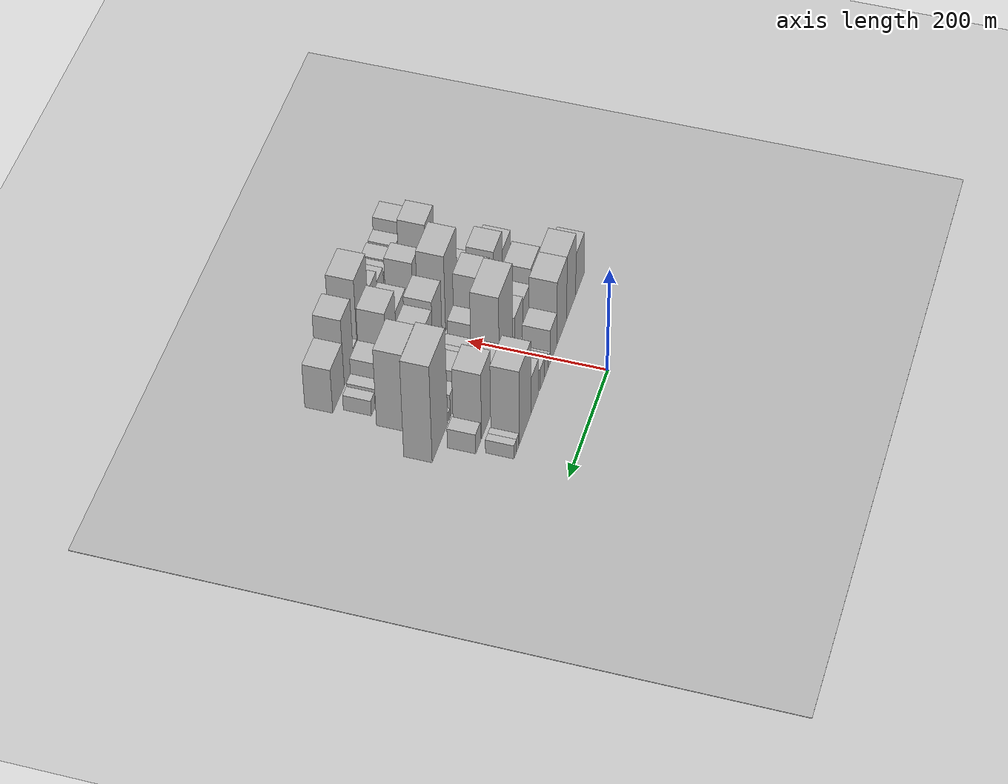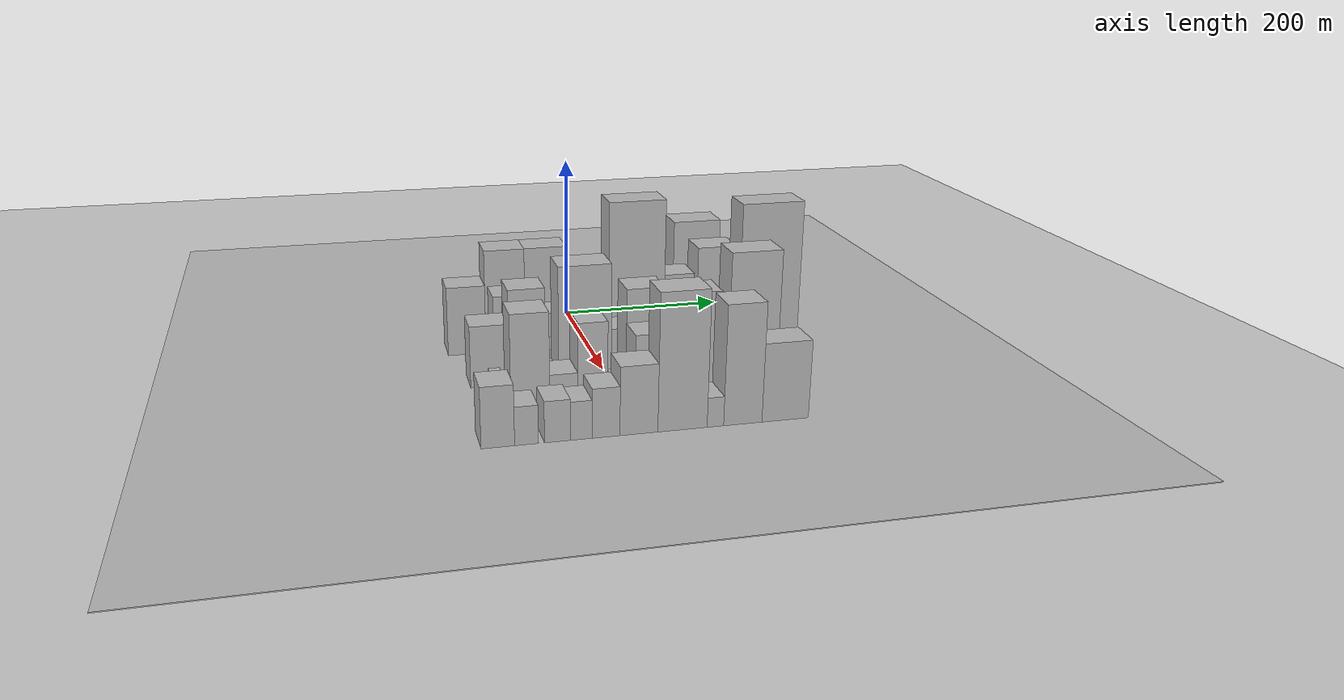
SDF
<sdf version="1.6">
 <world name="default">
  <include><name>ground_plane_1</name><uri>model://HANNAS_ground_plane</uri></include>
  <include>
   <name>ground_plane_2</name>
   <uri>model://HANNAS_ground_plane</uri>
   <pose>100 0 0  0 0 0</pose>
  </include>
  <model name="building_24">
   <static>1</static>
   <pose>100.0000 -145.9014 0 0.000000 0.000000 0.000000</pose>
   <link name="link">
    <pose>0 0 42.00 0 0 0</pose>
    <collision name="collision"><geometry><box><size>40.0000 45.0481 84.0000</size></box></geometry></collision>
    <visual name="visual">
     <cast_shadows>0</cast_shadows>
     <geometry><box><size>40.0000 45.0481 84.0000</size></box></geometry>
     <material>
      <script>
       <uri>model://HANNAS_wall/materials/scripts</uri>
       <uri>model://HANNAS_wall/materials/textures</uri>
       <name>vrc/HANNAS_wall</name>
      </script>
     </material>
    </visual>
   </link>
  </model>
  <model name="building_25">
   <static>1</static>
   <pose>100.0000 -99.7520 0 0.000000 0.000000 0.000000</pose>
   <link name="link">
    <pose>0 0 63.00 0 0 0</pose>
    <collision name="collision"><geometry><box><size>40.0000 47.2507 126.0000</size></box></geometry></collision>
    <visual name="visual">
     <cast_shadows>0</cast_shadows>
     <geometry><box><size>40.0000 47.2507 126.0000</size></box></geometry>
     <material>
      <script>
       <uri>model://HANNAS_wall/materials/scripts</uri>
       <uri>model://HANNAS_wall/materials/textures</uri>
       <name>vrc/HANNAS_wall</name>
      </script>
     </material>
    </visual>
   </link>
  </model>
  <model name="building_26">
   <static>1</static>
   <pose>100.0000 -50.9688 0 0.000000 0.000000 0.000000</pose>
   <link name="link">
    <pose>0 0 63.00 0 0 0</pose>
    <collision name="collision"><geometry><box><size>40.0000 50.3157 126.0000</size></box></geometry></collision>
    <visual name="visual">
     <cast_shadows>0</cast_shadows>
     <geometry><box><size>40.0000 50.3157 126.0000</size></box></geometry>
     <material>
      <script>
       <uri>model://HANNAS_wall/materials/scripts</uri>
       <uri>model://HANNAS_wall/materials/textures</uri>
       <name>vrc/HANNAS_wall</name>
      </script>
     </material>
    </visual>
   </link>
  </model>
  <model name="building_27">
   <static>1</static>
   <pose>100.0000 -8.4160 0 0.000000 0.000000 0.000000</pose>
   <link name="link">
    <pose>0 0 33.00 0 0 0</pose>
    <collision name="collision"><geometry><box><size>40.0000 34.7900 66.0000</size></box></geometry></collision>
    <visual name="visual">
     <cast_shadows>0</cast_shadows>
     <geometry><box><size>40.0000 34.7900 66.0000</size></box></geometry>
     <material>
      <script>
       <uri>model://HANNAS_wall/materials/scripts</uri>
       <uri>model://HANNAS_wall/materials/textures</uri>
       <name>vrc/HANNAS_wall</name>
      </script>
     </material>
    </visual>
   </link>
  </model>
  <model name="building_28">
   <static>1</static>
   <pose>100.0000 14.8980 0 0.000000 0.000000 0.000000</pose>
   <link name="link">
    <pose>0 0 12.00 0 0 0</pose>
    <collision name="collision"><geometry><box><size>40.0000 11.8380 24.0000</size></box></geometry></collision>
    <visual name="visual">
     <cast_shadows>0</cast_shadows>
     <geometry><box><size>40.0000 11.8380 24.0000</size></box></geometry>
     <material>
      <script>
       <uri>model://HANNAS_wall/materials/scripts</uri>
       <uri>model://HANNAS_wall/materials/textures</uri>
       <name>vrc/HANNAS_wall</name>
      </script>
     </material>
    </visual>
   </link>
  </model>
  <model name="building_29">
   <static>1</static>
   <pose>100.0000 30.3030 0 0.000000 0.000000 0.000000</pose>
   <link name="link">
    <pose>0 0 16.50 0 0 0</pose>
    <collision name="collision"><geometry><box><size>40.0000 18.9719 33.0000</size></box></geometry></collision>
    <visual name="visual">
     <cast_shadows>0</cast_shadows>
     <geometry><box><size>40.0000 18.9719 33.0000</size></box></geometry>
     <material>
      <script>
       <uri>model://HANNAS_wall/materials/scripts</uri>
       <uri>model://HANNAS_wall/materials/textures</uri>
       <name>vrc/HANNAS_wall</name>
      </script>
     </material>
    </visual>
   </link>
  </model>
  <model name="building_30">
   <static>1</static>
   <pose>100.0000 50.5522 0 0.000000 0.000000 0.000000</pose>
   <link name="link">
    <pose>0 0 21.00 0 0 0</pose>
    <collision name="collision"><geometry><box><size>40.0000 21.5266 42.0000</size></box></geometry></collision>
    <visual name="visual">
     <cast_shadows>0</cast_shadows>
     <geometry><box><size>40.0000 21.5266 42.0000</size></box></geometry>
     <material>
      <script>
       <uri>model://HANNAS_wall/materials/scripts</uri>
       <uri>model://HANNAS_wall/materials/textures</uri>
       <name>vrc/HANNAS_wall</name>
      </script>
     </material>
    </visual>
   </link>
  </model>
  <model name="building_31">
   <static>1</static>
   <pose>100.0000 87.1205 0 0.000000 0.000000 0.000000</pose>
   <link name="link">
    <pose>0 0 36.00 0 0 0</pose>
    <collision name="collision"><geometry><box><size>40.0000 37.6100 72.0000</size></box></geometry></collision>
    <visual name="visual">
     <cast_shadows>0</cast_shadows>
     <geometry><box><size>40.0000 37.6100 72.0000</size></box></geometry>
     <material>
      <script>
       <uri>model://HANNAS_wall/materials/scripts</uri>
       <uri>model://HANNAS_wall/materials/textures</uri>
       <name>vrc/HANNAS_wall</name>
      </script>
     </material>
    </visual>
   </link>
  </model>
  <model name="building_32">
   <static>1</static>
   <pose>100.0000 134.5397 0 0.000000 0.000000 0.000000</pose>
   <link name="link">
    <pose>0 0 73.50 0 0 0</pose>
    <collision name="collision"><geometry><box><size>40.0000 57.2284 147.0000</size></box></geometry></collision>
    <visual name="visual">
     <cast_shadows>0</cast_shadows>
     <geometry><box><size>40.0000 57.2284 147.0000</size></box></geometry>
     <material>
      <script>
       <uri>model://HANNAS_wall/materials/scripts</uri>
       <uri>model://HANNAS_wall/materials/textures</uri>
       <name>vrc/HANNAS_wall</name>
      </script>
     </material>
    </visual>
   </link>
  </model>
  <model name="building_33">
   <static>1</static>
   <pose>100.0000 171.6060 0 0.000000 0.000000 0.000000</pose>
   <link name="link">
    <pose>0 0 13.50 0 0 0</pose>
    <collision name="collision"><geometry><box><size>40.0000 10.9042 27.0000</size></box></geometry></collision>
    <visual name="visual">
     <cast_shadows>0</cast_shadows>
     <geometry><box><size>40.0000 10.9042 27.0000</size></box></geometry>
     <material>
      <script>
       <uri>model://HANNAS_wall/materials/scripts</uri>
       <uri>model://HANNAS_wall/materials/textures</uri>
       <name>vrc/HANNAS_wall</name>
      </script>
     </material>
    </visual>
   </link>
  </model>
  <model name="building_34">
   <static>1</static>
   <pose>100.0000 183.1863 0 0.000000 0.000000 0.000000</pose>
   <link name="link">
    <pose>0 0 13.50 0 0 0</pose>
    <collision name="collision"><geometry><box><size>40.0000 12.2563 27.0000</size></box></geometry></collision>
    <visual name="visual">
     <cast_shadows>0</cast_shadows>
     <geometry><box><size>40.0000 12.2563 27.0000</size></box></geometry>
     <material>
      <script>
       <uri>model://HANNAS_wall/materials/scripts</uri>
       <uri>model://HANNAS_wall/materials/textures</uri>
       <name>vrc/HANNAS_wall</name>
      </script>
     </material>
    </visual>
   </link>
  </model>
  <model name="building_77">
   <static>1</static>
   <pose>152.0000 -98.9929 0 0.000000 0.000000 0.000000</pose>
   <link name="link">
    <pose>0 0 43.50 0 0 0</pose>
    <collision name="collision"><geometry><box><size>40.0000 45.1673 87.0000</size></box></geometry></collision>
    <visual name="visual">
     <cast_shadows>0</cast_shadows>
     <geometry><box><size>40.0000 45.1673 87.0000</size></box></geometry>
     <material>
      <script>
       <uri>model://HANNAS_wall/materials/scripts</uri>
       <uri>model://HANNAS_wall/materials/textures</uri>
       <name>vrc/HANNAS_wall</name>
      </script>
     </material>
    </visual>
   </link>
  </model>
  <model name="building_78">
   <static>1</static>
   <pose>152.0000 -53.6270 0 0.000000 0.000000 0.000000</pose>
   <link name="link">
    <pose>0 0 31.50 0 0 0</pose>
    <collision name="collision"><geometry><box><size>40.0000 33.5644 63.0000</size></box></geometry></collision>
    <visual name="visual">
     <cast_shadows>0</cast_shadows>
     <geometry><box><size>40.0000 33.5644 63.0000</size></box></geometry>
     <material>
      <script>
       <uri>model://HANNAS_wall/materials/scripts</uri>
       <uri>model://HANNAS_wall/materials/textures</uri>
       <name>vrc/HANNAS_wall</name>
      </script>
     </material>
    </visual>
   </link>
  </model>
  <model name="building_79">
   <static>1</static>
   <pose>152.0000 -16.1086 0 0.000000 0.000000 0.000000</pose>
   <link name="link">
    <pose>0 0 36.00 0 0 0</pose>
    <collision name="collision"><geometry><box><size>40.0000 41.4724 72.0000</size></box></geometry></collision>
    <visual name="visual">
     <cast_shadows>0</cast_shadows>
     <geometry><box><size>40.0000 41.4724 72.0000</size></box></geometry>
     <material>
      <script>
       <uri>model://HANNAS_wall/materials/scripts</uri>
       <uri>model://HANNAS_wall/materials/textures</uri>
       <name>vrc/HANNAS_wall</name>
      </script>
     </material>
    </visual>
   </link>
  </model>
  <model name="building_80">
   <static>1</static>
   <pose>152.0000 46.8552 0 0.000000 0.000000 0.000000</pose>
   <link name="link">
    <pose>0 0 94.50 0 0 0</pose>
    <collision name="collision"><geometry><box><size>40.0000 66.4551 189.0000</size></box></geometry></collision>
    <visual name="visual">
     <cast_shadows>0</cast_shadows>
     <geometry><box><size>40.0000 66.4551 189.0000</size></box></geometry>
     <material>
      <script>
       <uri>model://HANNAS_wall/materials/scripts</uri>
       <uri>model://HANNAS_wall/materials/textures</uri>
       <name>vrc/HANNAS_wall</name>
      </script>
     </material>
    </visual>
   </link>
  </model>
  <model name="building_81">
   <static>1</static>
   <pose>152.0000 98.0743 0 0.000000 0.000000 0.000000</pose>
   <link name="link">
    <pose>0 0 49.50 0 0 0</pose>
    <collision name="collision"><geometry><box><size>40.0000 35.9830 99.0000</size></box></geometry></collision>
    <visual name="visual">
     <cast_shadows>0</cast_shadows>
     <geometry><box><size>40.0000 35.9830 99.0000</size></box></geometry>
     <material>
      <script>
       <uri>model://HANNAS_wall/materials/scripts</uri>
       <uri>model://HANNAS_wall/materials/textures</uri>
       <name>vrc/HANNAS_wall</name>
      </script>
     </material>
    </visual>
   </link>
  </model>
  <model name="building_82">
   <static>1</static>
   <pose>152.0000 143.4225 0 0.000000 0.000000 0.000000</pose>
   <link name="link">
    <pose>0 0 64.50 0 0 0</pose>
    <collision name="collision"><geometry><box><size>40.0000 46.7135 129.0000</size></box></geometry></collision>
    <visual name="visual">
     <cast_shadows>0</cast_shadows>
     <geometry><box><size>40.0000 46.7135 129.0000</size></box></geometry>
     <material>
      <script>
       <uri>model://HANNAS_wall/materials/scripts</uri>
       <uri>model://HANNAS_wall/materials/textures</uri>
       <name>vrc/HANNAS_wall</name>
      </script>
     </material>
    </visual>
   </link>
  </model>
  <model name="building_83">
   <static>1</static>
   <pose>152.0000 183.2130 0 0.000000 0.000000 0.000000</pose>
   <link name="link">
    <pose>0 0 19.50 0 0 0</pose>
    <collision name="collision"><geometry><box><size>40.0000 22.8673 39.0000</size></box></geometry></collision>
    <visual name="visual">
     <cast_shadows>0</cast_shadows>
     <geometry><box><size>40.0000 22.8673 39.0000</size></box></geometry>
     <material>
      <script>
       <uri>model://HANNAS_wall/materials/scripts</uri>
       <uri>model://HANNAS_wall/materials/textures</uri>
       <name>vrc/HANNAS_wall</name>
      </script>
     </material>
    </visual>
   </link>
  </model>
  <model name="building_119">
   <static>1</static>
   <pose>204.0000 -134.3237 0 0.000000 0.000000 0.000000</pose>
   <link name="link">
    <pose>0 0 36.00 0 0 0</pose>
    <collision name="collision"><geometry><box><size>40.0000 42.7244 72.0000</size></box></geometry></collision>
    <visual name="visual">
     <cast_shadows>0</cast_shadows>
     <geometry><box><size>40.0000 42.7244 72.0000</size></box></geometry>
     <material>
      <script>
       <uri>model://HANNAS_wall/materials/scripts</uri>
       <uri>model://HANNAS_wall/materials/textures</uri>
       <name>vrc/HANNAS_wall</name>
      </script>
     </material>
    </visual>
   </link>
  </model>
  <model name="building_120">
   <static>1</static>
   <pose>204.0000 -92.2911 0 0.000000 0.000000 0.000000</pose>
   <link name="link">
    <pose>0 0 55.50 0 0 0</pose>
    <collision name="collision"><geometry><box><size>40.0000 41.3408 111.0000</size></box></geometry></collision>
    <visual name="visual">
     <cast_shadows>0</cast_shadows>
     <geometry><box><size>40.0000 41.3408 111.0000</size></box></geometry>
     <material>
      <script>
       <uri>model://HANNAS_wall/materials/scripts</uri>
       <uri>model://HANNAS_wall/materials/textures</uri>
       <name>vrc/HANNAS_wall</name>
      </script>
     </material>
    </visual>
   </link>
  </model>
  <model name="building_121">
   <static>1</static>
   <pose>204.0000 -61.8503 0 0.000000 0.000000 0.000000</pose>
   <link name="link">
    <pose>0 0 19.50 0 0 0</pose>
    <collision name="collision"><geometry><box><size>40.0000 19.5409 39.0000</size></box></geometry></collision>
    <visual name="visual">
     <cast_shadows>0</cast_shadows>
     <geometry><box><size>40.0000 19.5409 39.0000</size></box></geometry>
     <material>
      <script>
       <uri>model://HANNAS_wall/materials/scripts</uri>
       <uri>model://HANNAS_wall/materials/textures</uri>
       <name>vrc/HANNAS_wall</name>
      </script>
     </material>
    </visual>
   </link>
  </model>
  <model name="building_122">
   <static>1</static>
   <pose>204.0000 -30.7507 0 0.000000 0.000000 0.000000</pose>
   <link name="link">
    <pose>0 0 60.00 0 0 0</pose>
    <collision name="collision"><geometry><box><size>40.0000 42.6581 120.0000</size></box></geometry></collision>
    <visual name="visual">
     <cast_shadows>0</cast_shadows>
     <geometry><box><size>40.0000 42.6581 120.0000</size></box></geometry>
     <material>
      <script>
       <uri>model://HANNAS_wall/materials/scripts</uri>
       <uri>model://HANNAS_wall/materials/textures</uri>
       <name>vrc/HANNAS_wall</name>
      </script>
     </material>
    </visual>
   </link>
  </model>
  <model name="building_123">
   <static>1</static>
   <pose>204.0000 5.5433 0 0.000000 0.000000 0.000000</pose>
   <link name="link">
    <pose>0 0 28.50 0 0 0</pose>
    <collision name="collision"><geometry><box><size>40.0000 29.9300 57.0000</size></box></geometry></collision>
    <visual name="visual">
     <cast_shadows>0</cast_shadows>
     <geometry><box><size>40.0000 29.9300 57.0000</size></box></geometry>
     <material>
      <script>
       <uri>model://HANNAS_wall/materials/scripts</uri>
       <uri>model://HANNAS_wall/materials/textures</uri>
       <name>vrc/HANNAS_wall</name>
      </script>
     </material>
    </visual>
   </link>
  </model>
  <model name="building_124">
   <static>1</static>
   <pose>204.0000 35.0746 0 0.000000 0.000000 0.000000</pose>
   <link name="link">
    <pose>0 0 18.00 0 0 0</pose>
    <collision name="collision"><geometry><box><size>40.0000 19.1325 36.0000</size></box></geometry></collision>
    <visual name="visual">
     <cast_shadows>0</cast_shadows>
     <geometry><box><size>40.0000 19.1325 36.0000</size></box></geometry>
     <material>
      <script>
       <uri>model://HANNAS_wall/materials/scripts</uri>
       <uri>model://HANNAS_wall/materials/textures</uri>
       <name>vrc/HANNAS_wall</name>
      </script>
     </material>
    </visual>
   </link>
  </model>
  <model name="building_125">
   <static>1</static>
   <pose>204.0000 54.2968 0 0.000000 0.000000 0.000000</pose>
   <link name="link">
    <pose>0 0 18.00 0 0 0</pose>
    <collision name="collision"><geometry><box><size>40.0000 19.3117 36.0000</size></box></geometry></collision>
    <visual name="visual">
     <cast_shadows>0</cast_shadows>
     <geometry><box><size>40.0000 19.3117 36.0000</size></box></geometry>
     <material>
      <script>
       <uri>model://HANNAS_wall/materials/scripts</uri>
       <uri>model://HANNAS_wall/materials/textures</uri>
       <name>vrc/HANNAS_wall</name>
      </script>
     </material>
    </visual>
   </link>
  </model>
  <model name="building_126">
   <static>1</static>
   <pose>204.0000 72.0915 0 0.000000 0.000000 0.000000</pose>
   <link name="link">
    <pose>0 0 15.00 0 0 0</pose>
    <collision name="collision"><geometry><box><size>40.0000 16.2778 30.0000</size></box></geometry></collision>
    <visual name="visual">
     <cast_shadows>0</cast_shadows>
     <geometry><box><size>40.0000 16.2778 30.0000</size></box></geometry>
     <material>
      <script>
       <uri>model://HANNAS_wall/materials/scripts</uri>
       <uri>model://HANNAS_wall/materials/textures</uri>
       <name>vrc/HANNAS_wall</name>
      </script>
     </material>
    </visual>
   </link>
  </model>
  <model name="building_127">
   <static>1</static>
   <pose>204.0000 98.4376 0 0.000000 0.000000 0.000000</pose>
   <link name="link">
    <pose>0 0 33.00 0 0 0</pose>
    <collision name="collision"><geometry><box><size>40.0000 36.4142 66.0000</size></box></geometry></collision>
    <visual name="visual">
     <cast_shadows>0</cast_shadows>
     <geometry><box><size>40.0000 36.4142 66.0000</size></box></geometry>
     <material>
      <script>
       <uri>model://HANNAS_wall/materials/scripts</uri>
       <uri>model://HANNAS_wall/materials/textures</uri>
       <name>vrc/HANNAS_wall</name>
      </script>
     </material>
    </visual>
   </link>
  </model>
  <model name="building_128">
   <static>1</static>
   <pose>204.0000 128.7992 0 0.000000 0.000000 0.000000</pose>
   <link name="link">
    <pose>0 0 22.50 0 0 0</pose>
    <collision name="collision"><geometry><box><size>40.0000 24.3091 45.0000</size></box></geometry></collision>
    <visual name="visual">
     <cast_shadows>0</cast_shadows>
     <geometry><box><size>40.0000 24.3091 45.0000</size></box></geometry>
     <material>
      <script>
       <uri>model://HANNAS_wall/materials/scripts</uri>
       <uri>model://HANNAS_wall/materials/textures</uri>
       <name>vrc/HANNAS_wall</name>
      </script>
     </material>
    </visual>
   </link>
  </model>
  <model name="building_129">
   <static>1</static>
   <pose>204.0000 144.7786 0 0.000000 0.000000 0.000000</pose>
   <link name="link">
    <pose>0 0 9.00 0 0 0</pose>
    <collision name="collision"><geometry><box><size>40.0000 7.6498 18.0000</size></box></geometry></collision>
    <visual name="visual">
     <cast_shadows>0</cast_shadows>
     <geometry><box><size>40.0000 7.6498 18.0000</size></box></geometry>
     <material>
      <script>
       <uri>model://HANNAS_wall/materials/scripts</uri>
       <uri>model://HANNAS_wall/materials/textures</uri>
       <name>vrc/HANNAS_wall</name>
      </script>
     </material>
    </visual>
   </link>
  </model>
  <model name="building_130">
   <static>1</static>
   <pose>204.0000 189.6260 0 0.000000 0.000000 0.000000</pose>
   <link name="link">
    <pose>0 0 96.00 0 0 0</pose>
    <collision name="collision"><geometry><box><size>40.0000 72.0449 192.0000</size></box></geometry></collision>
    <visual name="visual">
     <cast_shadows>0</cast_shadows>
     <geometry><box><size>40.0000 72.0449 192.0000</size></box></geometry>
     <material>
      <script>
       <uri>model://HANNAS_wall/materials/scripts</uri>
       <uri>model://HANNAS_wall/materials/textures</uri>
       <name>vrc/HANNAS_wall</name>
      </script>
     </material>
    </visual>
   </link>
  </model>
  <model name="building_171">
   <static>1</static>
   <pose>256.0000 -131.1847 0 0.000000 0.000000 0.000000</pose>
   <link name="link">
    <pose>0 0 13.50 0 0 0</pose>
    <collision name="collision"><geometry><box><size>40.0000 12.7185 27.0000</size></box></geometry></collision>
    <visual name="visual">
     <cast_shadows>0</cast_shadows>
     <geometry><box><size>40.0000 12.7185 27.0000</size></box></geometry>
     <material>
      <script>
       <uri>model://HANNAS_wall/materials/scripts</uri>
       <uri>model://HANNAS_wall/materials/textures</uri>
       <name>vrc/HANNAS_wall</name>
      </script>
     </material>
    </visual>
   </link>
  </model>
  <model name="building_172">
   <static>1</static>
   <pose>256.0000 -99.3108 0 0.000000 0.000000 0.000000</pose>
   <link name="link">
    <pose>0 0 28.50 0 0 0</pose>
    <collision name="collision"><geometry><box><size>40.0000 31.0292 57.0000</size></box></geometry></collision>
    <visual name="visual">
     <cast_shadows>0</cast_shadows>
     <geometry><box><size>40.0000 31.0292 57.0000</size></box></geometry>
     <material>
      <script>
       <uri>model://HANNAS_wall/materials/scripts</uri>
       <uri>model://HANNAS_wall/materials/textures</uri>
       <name>vrc/HANNAS_wall</name>
      </script>
     </material>
    </visual>
   </link>
  </model>
  <model name="building_173">
   <static>1</static>
   <pose>256.0000 -75.4468 0 0.000000 0.000000 0.000000</pose>
   <link name="link">
    <pose>0 0 16.50 0 0 0</pose>
    <collision name="collision"><geometry><box><size>40.0000 16.6988 33.0000</size></box></geometry></collision>
    <visual name="visual">
     <cast_shadows>0</cast_shadows>
     <geometry><box><size>40.0000 16.6988 33.0000</size></box></geometry>
     <material>
      <script>
       <uri>model://HANNAS_wall/materials/scripts</uri>
       <uri>model://HANNAS_wall/materials/textures</uri>
       <name>vrc/HANNAS_wall</name>
      </script>
     </material>
    </visual>
   </link>
  </model>
  <model name="building_174">
   <static>1</static>
   <pose>256.0000 -38.0127 0 0.000000 0.000000 0.000000</pose>
   <link name="link">
    <pose>0 0 75.00 0 0 0</pose>
    <collision name="collision"><geometry><box><size>40.0000 58.1695 150.0000</size></box></geometry></collision>
    <visual name="visual">
     <cast_shadows>0</cast_shadows>
     <geometry><box><size>40.0000 58.1695 150.0000</size></box></geometry>
     <material>
      <script>
       <uri>model://HANNAS_wall/materials/scripts</uri>
       <uri>model://HANNAS_wall/materials/textures</uri>
       <name>vrc/HANNAS_wall</name>
      </script>
     </material>
    </visual>
   </link>
  </model>
  <model name="building_175">
   <static>1</static>
   <pose>256.0000 3.9690 0 0.000000 0.000000 0.000000</pose>
   <link name="link">
    <pose>0 0 9.00 0 0 0</pose>
    <collision name="collision"><geometry><box><size>40.0000 7.7939 18.0000</size></box></geometry></collision>
    <visual name="visual">
     <cast_shadows>0</cast_shadows>
     <geometry><box><size>40.0000 7.7939 18.0000</size></box></geometry>
     <material>
      <script>
       <uri>model://HANNAS_wall/materials/scripts</uri>
       <uri>model://HANNAS_wall/materials/textures</uri>
       <name>vrc/HANNAS_wall</name>
      </script>
     </material>
    </visual>
   </link>
  </model>
  <model name="building_176">
   <static>1</static>
   <pose>256.0000 29.1103 0 0.000000 0.000000 0.000000</pose>
   <link name="link">
    <pose>0 0 60.00 0 0 0</pose>
    <collision name="collision"><geometry><box><size>40.0000 42.4886 120.0000</size></box></geometry></collision>
    <visual name="visual">
     <cast_shadows>0</cast_shadows>
     <geometry><box><size>40.0000 42.4886 120.0000</size></box></geometry>
     <material>
      <script>
       <uri>model://HANNAS_wall/materials/scripts</uri>
       <uri>model://HANNAS_wall/materials/textures</uri>
       <name>vrc/HANNAS_wall</name>
      </script>
     </material>
    </visual>
   </link>
  </model>
  <model name="building_177">
   <static>1</static>
   <pose>256.0000 70.7285 0 0.000000 0.000000 0.000000</pose>
   <link name="link">
    <pose>0 0 52.50 0 0 0</pose>
    <collision name="collision"><geometry><box><size>40.0000 40.7479 105.0000</size></box></geometry></collision>
    <visual name="visual">
     <cast_shadows>0</cast_shadows>
     <geometry><box><size>40.0000 40.7479 105.0000</size></box></geometry>
     <material>
      <script>
       <uri>model://HANNAS_wall/materials/scripts</uri>
       <uri>model://HANNAS_wall/materials/textures</uri>
       <name>vrc/HANNAS_wall</name>
      </script>
     </material>
    </visual>
   </link>
  </model>
  <model name="building_178">
   <static>1</static>
   <pose>256.0000 107.7971 0 0.000000 0.000000 0.000000</pose>
   <link name="link">
    <pose>0 0 30.00 0 0 0</pose>
    <collision name="collision"><geometry><box><size>40.0000 33.3893 60.0000</size></box></geometry></collision>
    <visual name="visual">
     <cast_shadows>0</cast_shadows>
     <geometry><box><size>40.0000 33.3893 60.0000</size></box></geometry>
     <material>
      <script>
       <uri>model://HANNAS_wall/materials/scripts</uri>
       <uri>model://HANNAS_wall/materials/textures</uri>
       <name>vrc/HANNAS_wall</name>
      </script>
     </material>
    </visual>
   </link>
  </model>
  <model name="building_179">
   <static>1</static>
   <pose>256.0000 153.5216 0 0.000000 0.000000 0.000000</pose>
   <link name="link">
    <pose>0 0 76.50 0 0 0</pose>
    <collision name="collision"><geometry><box><size>40.0000 58.0596 153.0000</size></box></geometry></collision>
    <visual name="visual">
     <cast_shadows>0</cast_shadows>
     <geometry><box><size>40.0000 58.0596 153.0000</size></box></geometry>
     <material>
      <script>
       <uri>model://HANNAS_wall/materials/scripts</uri>
       <uri>model://HANNAS_wall/materials/textures</uri>
       <name>vrc/HANNAS_wall</name>
      </script>
     </material>
    </visual>
   </link>
  </model>
  <model name="building_220">
   <static>1</static>
   <pose>308.0000 -132.6690 0 0.000000 0.000000 0.000000</pose>
   <link name="link">
    <pose>0 0 12.00 0 0 0</pose>
    <collision name="collision"><geometry><box><size>40.0000 10.1148 24.0000</size></box></geometry></collision>
    <visual name="visual">
     <cast_shadows>0</cast_shadows>
     <geometry><box><size>40.0000 10.1148 24.0000</size></box></geometry>
     <material>
      <script>
       <uri>model://HANNAS_wall/materials/scripts</uri>
       <uri>model://HANNAS_wall/materials/textures</uri>
       <name>vrc/HANNAS_wall</name>
      </script>
     </material>
    </visual>
   </link>
  </model>
  <model name="building_221">
   <static>1</static>
   <pose>308.0000 -107.3055 0 0.000000 0.000000 0.000000</pose>
   <link name="link">
    <pose>0 0 60.00 0 0 0</pose>
    <collision name="collision"><geometry><box><size>40.0000 40.6122 120.0000</size></box></geometry></collision>
    <visual name="visual">
     <cast_shadows>0</cast_shadows>
     <geometry><box><size>40.0000 40.6122 120.0000</size></box></geometry>
     <material>
      <script>
       <uri>model://HANNAS_wall/materials/scripts</uri>
       <uri>model://HANNAS_wall/materials/textures</uri>
       <name>vrc/HANNAS_wall</name>
      </script>
     </material>
    </visual>
   </link>
  </model>
  <model name="building_222">
   <static>1</static>
   <pose>308.0000 -72.0398 0 0.000000 0.000000 0.000000</pose>
   <link name="link">
    <pose>0 0 25.50 0 0 0</pose>
    <collision name="collision"><geometry><box><size>40.0000 29.9191 51.0000</size></box></geometry></collision>
    <visual name="visual">
     <cast_shadows>0</cast_shadows>
     <geometry><box><size>40.0000 29.9191 51.0000</size></box></geometry>
     <material>
      <script>
       <uri>model://HANNAS_wall/materials/scripts</uri>
       <uri>model://HANNAS_wall/materials/textures</uri>
       <name>vrc/HANNAS_wall</name>
      </script>
     </material>
    </visual>
   </link>
  </model>
  <model name="building_223">
   <static>1</static>
   <pose>308.0000 -41.2456 0 0.000000 0.000000 0.000000</pose>
   <link name="link">
    <pose>0 0 52.50 0 0 0</pose>
    <collision name="collision"><geometry><box><size>40.0000 31.6694 105.0000</size></box></geometry></collision>
    <visual name="visual">
     <cast_shadows>0</cast_shadows>
     <geometry><box><size>40.0000 31.6694 105.0000</size></box></geometry>
     <material>
      <script>
       <uri>model://HANNAS_wall/materials/scripts</uri>
       <uri>model://HANNAS_wall/materials/textures</uri>
       <name>vrc/HANNAS_wall</name>
      </script>
     </material>
    </visual>
   </link>
  </model>
  <model name="building_224">
   <static>1</static>
   <pose>308.0000 -6.0878 0 0.000000 0.000000 0.000000</pose>
   <link name="link">
    <pose>0 0 18.00 0 0 0</pose>
    <collision name="collision"><geometry><box><size>40.0000 20.6462 36.0000</size></box></geometry></collision>
    <visual name="visual">
     <cast_shadows>0</cast_shadows>
     <geometry><box><size>40.0000 20.6462 36.0000</size></box></geometry>
     <material>
      <script>
       <uri>model://HANNAS_wall/materials/scripts</uri>
       <uri>model://HANNAS_wall/materials/textures</uri>
       <name>vrc/HANNAS_wall</name>
      </script>
     </material>
    </visual>
   </link>
  </model>
  <model name="building_225">
   <static>1</static>
   <pose>308.0000 28.0080 0 0.000000 0.000000 0.000000</pose>
   <link name="link">
    <pose>0 0 43.50 0 0 0</pose>
    <collision name="collision"><geometry><box><size>40.0000 47.5454 87.0000</size></box></geometry></collision>
    <visual name="visual">
     <cast_shadows>0</cast_shadows>
     <geometry><box><size>40.0000 47.5454 87.0000</size></box></geometry>
     <material>
      <script>
       <uri>model://HANNAS_wall/materials/scripts</uri>
       <uri>model://HANNAS_wall/materials/textures</uri>
       <name>vrc/HANNAS_wall</name>
      </script>
     </material>
    </visual>
   </link>
  </model>
  <model name="building_226">
   <static>1</static>
   <pose>308.0000 74.2462 0 0.000000 0.000000 0.000000</pose>
   <link name="link">
    <pose>0 0 64.50 0 0 0</pose>
    <collision name="collision"><geometry><box><size>40.0000 44.9309 129.0000</size></box></geometry></collision>
    <visual name="visual">
     <cast_shadows>0</cast_shadows>
     <geometry><box><size>40.0000 44.9309 129.0000</size></box></geometry>
     <material>
      <script>
       <uri>model://HANNAS_wall/materials/scripts</uri>
       <uri>model://HANNAS_wall/materials/textures</uri>
       <name>vrc/HANNAS_wall</name>
      </script>
     </material>
    </visual>
   </link>
  </model>
  <model name="building_227">
   <static>1</static>
   <pose>308.0000 114.5401 0 0.000000 0.000000 0.000000</pose>
   <link name="link">
    <pose>0 0 33.00 0 0 0</pose>
    <collision name="collision"><geometry><box><size>40.0000 35.6569 66.0000</size></box></geometry></collision>
    <visual name="visual">
     <cast_shadows>0</cast_shadows>
     <geometry><box><size>40.0000 35.6569 66.0000</size></box></geometry>
     <material>
      <script>
       <uri>model://HANNAS_wall/materials/scripts</uri>
       <uri>model://HANNAS_wall/materials/textures</uri>
       <name>vrc/HANNAS_wall</name>
      </script>
     </material>
    </visual>
   </link>
  </model>
  <model name="building_228">
   <static>1</static>
   <pose>308.0000 141.6645 0 0.000000 0.000000 0.000000</pose>
   <link name="link">
    <pose>0 0 18.00 0 0 0</pose>
    <collision name="collision"><geometry><box><size>40.0000 18.5921 36.0000</size></box></geometry></collision>
    <visual name="visual">
     <cast_shadows>0</cast_shadows>
     <geometry><box><size>40.0000 18.5921 36.0000</size></box></geometry>
     <material>
      <script>
       <uri>model://HANNAS_wall/materials/scripts</uri>
       <uri>model://HANNAS_wall/materials/textures</uri>
       <name>vrc/HANNAS_wall</name>
      </script>
     </material>
    </visual>
   </link>
  </model>
  <model name="building_229">
   <static>1</static>
   <pose>308.0000 159.4809 0 0.000000 0.000000 0.000000</pose>
   <link name="link">
    <pose>0 0 15.00 0 0 0</pose>
    <collision name="collision"><geometry><box><size>40.0000 17.0407 30.0000</size></box></geometry></collision>
    <visual name="visual">
     <cast_shadows>0</cast_shadows>
     <geometry><box><size>40.0000 17.0407 30.0000</size></box></geometry>
     <material>
      <script>
       <uri>model://HANNAS_wall/materials/scripts</uri>
       <uri>model://HANNAS_wall/materials/textures</uri>
       <name>vrc/HANNAS_wall</name>
      </script>
     </material>
    </visual>
   </link>
  </model>
  <model name="building_271">
   <static>1</static>
   <pose>360.0000 -149.5984 0 0.000000 0.000000 0.000000</pose>
   <link name="link">
    <pose>0 0 33.00 0 0 0</pose>
    <collision name="collision"><geometry><box><size>40.0000 33.5603 66.0000</size></box></geometry></collision>
    <visual name="visual">
     <cast_shadows>0</cast_shadows>
     <geometry><box><size>40.0000 33.5603 66.0000</size></box></geometry>
     <material>
      <script>
       <uri>model://HANNAS_wall/materials/scripts</uri>
       <uri>model://HANNAS_wall/materials/textures</uri>
       <name>vrc/HANNAS_wall</name>
      </script>
     </material>
    </visual>
   </link>
  </model>
  <model name="building_272">
   <static>1</static>
   <pose>360.0000 -120.7436 0 0.000000 0.000000 0.000000</pose>
   <link name="link">
    <pose>0 0 21.00 0 0 0</pose>
    <collision name="collision"><geometry><box><size>40.0000 24.1493 42.0000</size></box></geometry></collision>
    <visual name="visual">
     <cast_shadows>0</cast_shadows>
     <geometry><box><size>40.0000 24.1493 42.0000</size></box></geometry>
     <material>
      <script>
       <uri>model://HANNAS_wall/materials/scripts</uri>
       <uri>model://HANNAS_wall/materials/textures</uri>
       <name>vrc/HANNAS_wall</name>
      </script>
     </material>
    </visual>
   </link>
  </model>
  <model name="building_273">
   <static>1</static>
   <pose>360.0000 -89.3605 0 0.000000 0.000000 0.000000</pose>
   <link name="link">
    <pose>0 0 22.50 0 0 0</pose>
    <collision name="collision"><geometry><box><size>40.0000 26.6168 45.0000</size></box></geometry></collision>
    <visual name="visual">
     <cast_shadows>0</cast_shadows>
     <geometry><box><size>40.0000 26.6168 45.0000</size></box></geometry>
     <material>
      <script>
       <uri>model://HANNAS_wall/materials/scripts</uri>
       <uri>model://HANNAS_wall/materials/textures</uri>
       <name>vrc/HANNAS_wall</name>
      </script>
     </material>
    </visual>
   </link>
  </model>
  <model name="building_274">
   <static>1</static>
   <pose>360.0000 -65.0022 0 0.000000 0.000000 0.000000</pose>
   <link name="link">
    <pose>0 0 21.00 0 0 0</pose>
    <collision name="collision"><geometry><box><size>40.0000 22.0999 42.0000</size></box></geometry></collision>
    <visual name="visual">
     <cast_shadows>0</cast_shadows>
     <geometry><box><size>40.0000 22.0999 42.0000</size></box></geometry>
     <material>
      <script>
       <uri>model://HANNAS_wall/materials/scripts</uri>
       <uri>model://HANNAS_wall/materials/textures</uri>
       <name>vrc/HANNAS_wall</name>
      </script>
     </material>
    </visual>
   </link>
  </model>
  <model name="building_275">
   <static>1</static>
   <pose>360.0000 -39.5396 0 0.000000 0.000000 0.000000</pose>
   <link name="link">
    <pose>0 0 27.00 0 0 0</pose>
    <collision name="collision"><geometry><box><size>40.0000 28.8252 54.0000</size></box></geometry></collision>
    <visual name="visual">
     <cast_shadows>0</cast_shadows>
     <geometry><box><size>40.0000 28.8252 54.0000</size></box></geometry>
     <material>
      <script>
       <uri>model://HANNAS_wall/materials/scripts</uri>
       <uri>model://HANNAS_wall/materials/textures</uri>
       <name>vrc/HANNAS_wall</name>
      </script>
     </material>
    </visual>
   </link>
  </model>
  <model name="building_276">
   <static>1</static>
   <pose>360.0000 -5.2485 0 0.000000 0.000000 0.000000</pose>
   <link name="link">
    <pose>0 0 37.50 0 0 0</pose>
    <collision name="collision"><geometry><box><size>40.0000 39.7571 75.0000</size></box></geometry></collision>
    <visual name="visual">
     <cast_shadows>0</cast_shadows>
     <geometry><box><size>40.0000 39.7571 75.0000</size></box></geometry>
     <material>
      <script>
       <uri>model://HANNAS_wall/materials/scripts</uri>
       <uri>model://HANNAS_wall/materials/textures</uri>
       <name>vrc/HANNAS_wall</name>
      </script>
     </material>
    </visual>
   </link>
  </model>
  <model name="building_277">
   <static>1</static>
   <pose>360.0000 40.8650 0 0.000000 0.000000 0.000000</pose>
   <link name="link">
    <pose>0 0 75.00 0 0 0</pose>
    <collision name="collision"><geometry><box><size>40.0000 52.4699 150.0000</size></box></geometry></collision>
    <visual name="visual">
     <cast_shadows>0</cast_shadows>
     <geometry><box><size>40.0000 52.4699 150.0000</size></box></geometry>
     <material>
      <script>
       <uri>model://HANNAS_wall/materials/scripts</uri>
       <uri>model://HANNAS_wall/materials/textures</uri>
       <name>vrc/HANNAS_wall</name>
      </script>
     </material>
    </visual>
   </link>
  </model>
  <model name="building_278">
   <static>1</static>
   <pose>360.0000 75.9917 0 0.000000 0.000000 0.000000</pose>
   <link name="link">
    <pose>0 0 16.50 0 0 0</pose>
    <collision name="collision"><geometry><box><size>40.0000 17.7836 33.0000</size></box></geometry></collision>
    <visual name="visual">
     <cast_shadows>0</cast_shadows>
     <geometry><box><size>40.0000 17.7836 33.0000</size></box></geometry>
     <material>
      <script>
       <uri>model://HANNAS_wall/materials/scripts</uri>
       <uri>model://HANNAS_wall/materials/textures</uri>
       <name>vrc/HANNAS_wall</name>
      </script>
     </material>
    </visual>
   </link>
  </model>
  <model name="building_279">
   <static>1</static>
   <pose>360.0000 105.6736 0 0.000000 0.000000 0.000000</pose>
   <link name="link">
    <pose>0 0 66.00 0 0 0</pose>
    <collision name="collision"><geometry><box><size>40.0000 41.5801 132.0000</size></box></geometry></collision>
    <visual name="visual">
     <cast_shadows>0</cast_shadows>
     <geometry><box><size>40.0000 41.5801 132.0000</size></box></geometry>
     <material>
      <script>
       <uri>model://HANNAS_wall/materials/scripts</uri>
       <uri>model://HANNAS_wall/materials/textures</uri>
       <name>vrc/HANNAS_wall</name>
      </script>
     </material>
    </visual>
   </link>
  </model>
  <model name="building_280">
   <static>1</static>
   <pose>360.0000 152.0680 0 0.000000 0.000000 0.000000</pose>
   <link name="link">
    <pose>0 0 43.50 0 0 0</pose>
    <collision name="collision"><geometry><box><size>40.0000 51.2086 87.0000</size></box></geometry></collision>
    <visual name="visual">
     <cast_shadows>0</cast_shadows>
     <geometry><box><size>40.0000 51.2086 87.0000</size></box></geometry>
     <material>
      <script>
       <uri>model://HANNAS_wall/materials/scripts</uri>
       <uri>model://HANNAS_wall/materials/textures</uri>
       <name>vrc/HANNAS_wall</name>
      </script>
     </material>
    </visual>
   </link>
  </model>
 </world>
</sdf>
